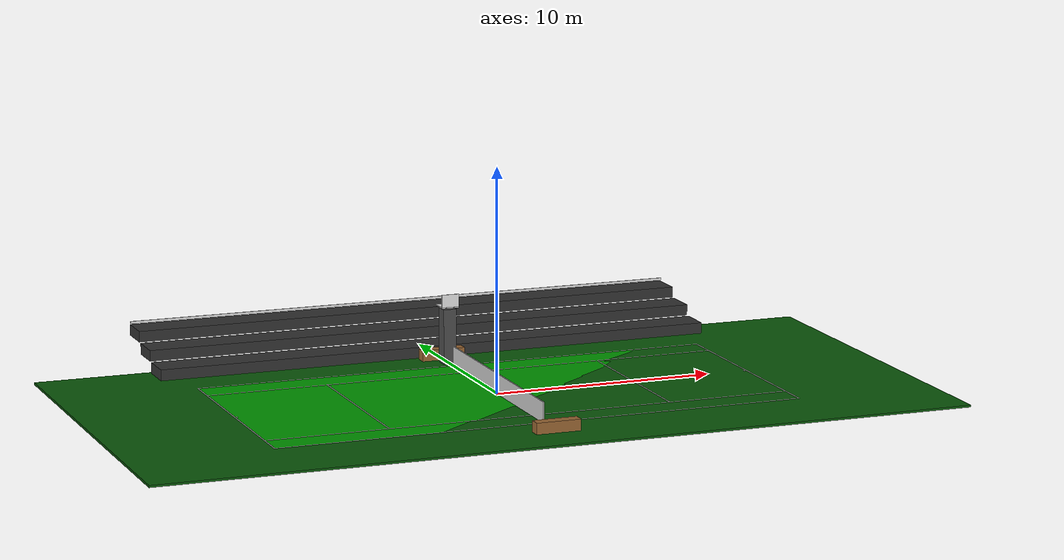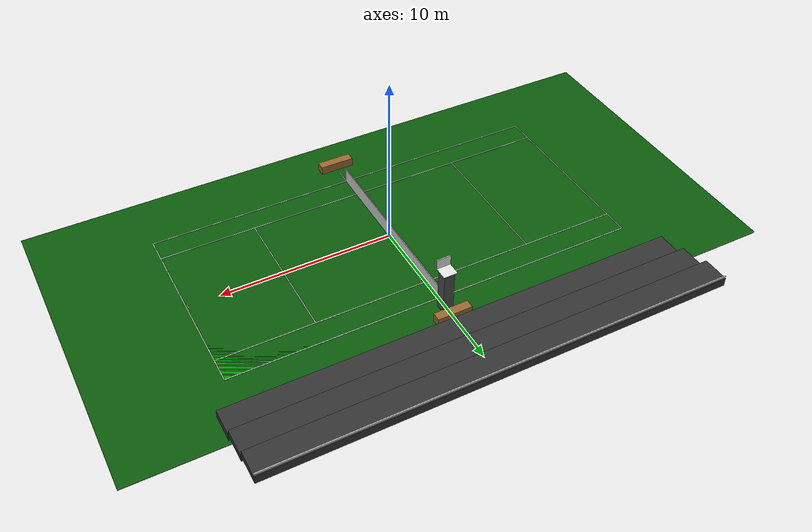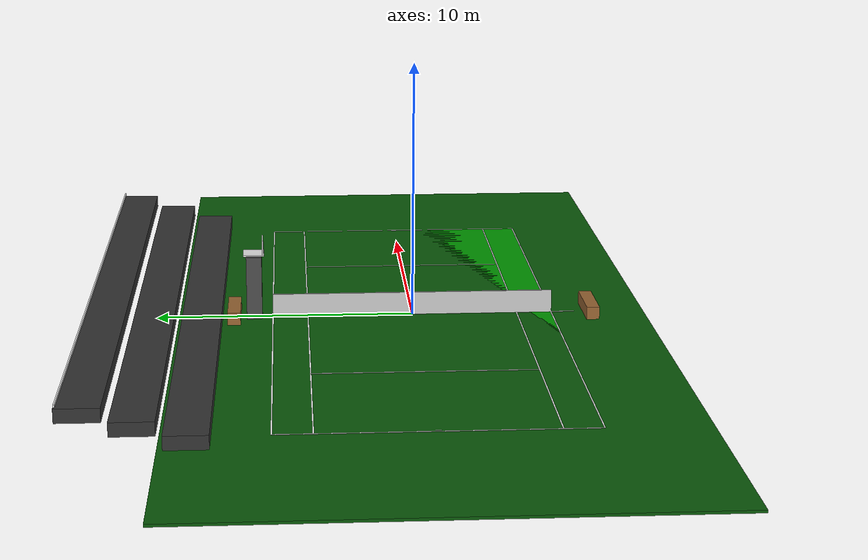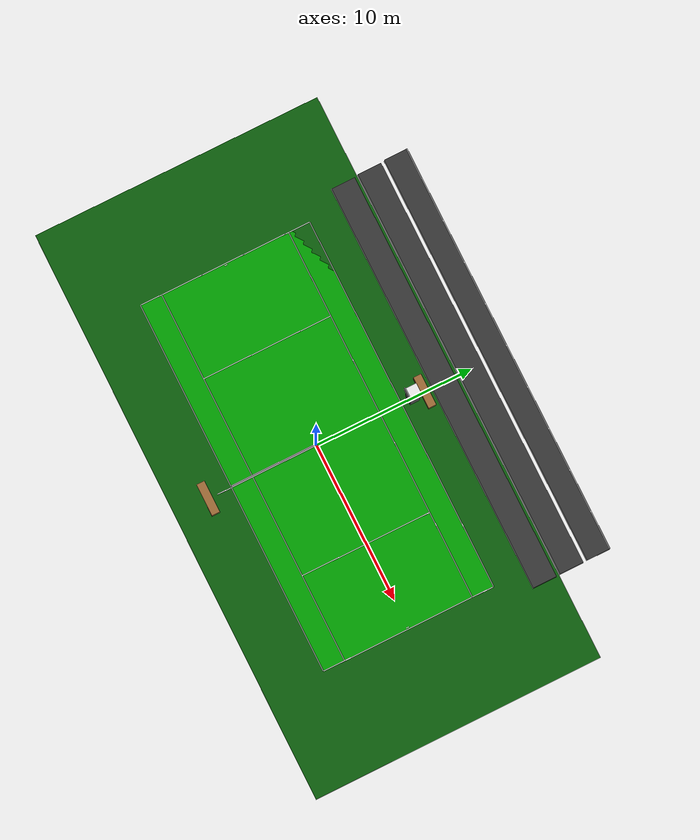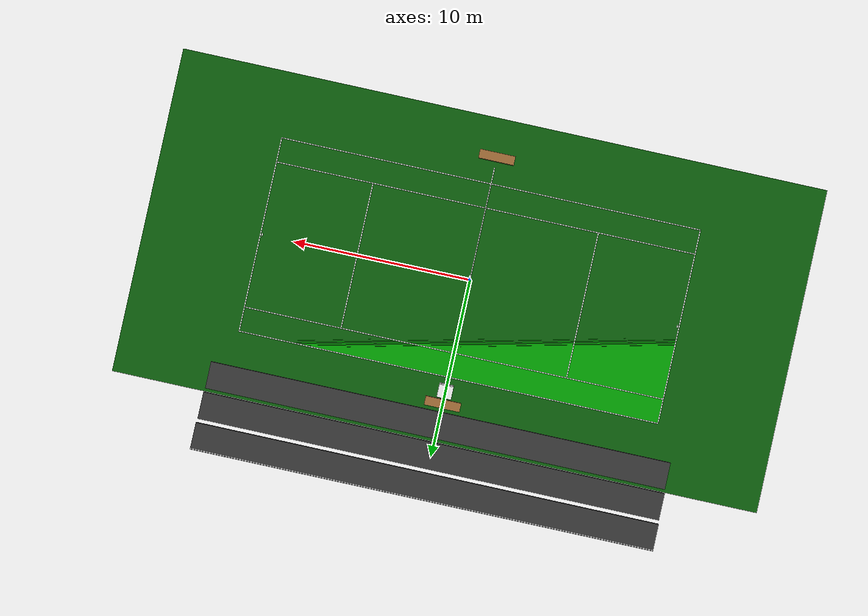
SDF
<?xml version="1.0" ?>
<sdf version="1.6">
  <world name="default">
    <!-- Built-in directional light (no model:// dependency) -->
    <light type="directional" name="sun">
      <cast_shadows>true</cast_shadows>
      <pose>11.85 0 0 0 0 0</pose>
      <diffuse>1 1 1 1</diffuse>
      <specular>0.1 0.1 0.1 1</specular>
      <attenuation>
        <range>1000</range>
        <constant>0.9</constant>
        <linear>0.01</linear>
        <quadratic>0.001</quadratic>
      </attenuation>
      <direction>-0.5 0.2 -1</direction>
    </light>

    <!-- ===== Tennis Court Model ===== -->
    <model name="tennis_court_scene">
      <static>true</static>
      <pose>0 0 0 0 0 0</pose>

      <!-- Outer venue apron (120ft x 60ft ≈ 36.57m x 18.29m) -->
      <link name="outer_apron">
        <collision name="outer_apron_collision">
          <geometry><box><size>36.57 18.29 0.10</size></box></geometry>
        </collision>
        <visual name="outer_apron_visual">
          <geometry><box><size>36.57 18.29 0.10</size></box></geometry>
          <material>
            <!-- darker green apron -->
            <ambient>0.02 0.25 0.02 1</ambient>
            <diffuse>0.04 0.35 0.04 1</diffuse>
            <specular>0.05 0.05 0.05 1</specular>
          </material>
        </visual>
        <!-- Put the top at z=0 for easy line placement -->
        <pose>0 0 -0.05 0 0 0</pose>
      </link>

      <!-- Main court (23.77m x 10.97m) -->
      <link name="court_ground">
        <collision name="court_collision">
          <geometry><box><size>23.77 10.97 0.10</size></box></geometry>
          <surface><friction><ode><mu>1.0</mu><mu2>1.0</mu2></ode></friction></surface>
        </collision>
        <visual name="court_visual">
          <geometry><box><size>23.77 10.97 0.10</size></box></geometry>
          <material>
            <!-- lighter playing area -->
            <ambient>0.0 0.50 0.0 1</ambient>
            <diffuse>0.0 0.60 0.0 1</diffuse>
            <specular>0.1 0.1 0.1 1</specular>
          </material>
        </visual>
        <!-- Top of the slab at z=0 -->
        <pose>0 0 -0.05 0 0 0</pose>
      </link>

      <!-- Court lines (thin white boxes slightly above the surface to avoid z-fighting) -->
      <link name="court_lines">
        <visual name="lines_visual_bundle">
          <!-- we’ll add many child visuals; no collision -->
          <geometry><box><size>0.001 0.001 0.001</size></box></geometry> <!-- dummy -->
        </visual>
        <pose>0 0 0.005 0 0 0</pose> <!-- lift lines 5mm above surface -->

        <!-- Common material for white lines -->
        <!-- (Gazebo Classic doesn't support "materials" reusable blocks; we just repeat) -->

        <!-- Dimensions & positions -->
        <!-- Court half-length: 11.885; half-width (doubles): 5.485; singles half-width: 4.115; service line x=±6.40 -->
        <!-- Line thickness (visual): 0.05m -->

        <!-- Baselines (at x=±11.885, spanning doubles width 10.97) -->
        <visual name="baseline_positive_x">
          <geometry><box><size>0.05 10.97 0.01</size></box></geometry>
          <material><ambient>1 1 1 1</ambient><diffuse>1 1 1 1</diffuse></material>
          <pose>11.885 0 0 0 0 0</pose>
        </visual>
        <visual name="baseline_negative_x">
          <geometry><box><size>0.05 10.97 0.01</size></box></geometry>
          <material><ambient>1 1 1 1</ambient><diffuse>1 1 1 1</diffuse></material>
          <pose>-11.885 0 0 0 0 0</pose>
        </visual>

        <!-- Doubles sidelines (y=±5.485, spanning full length 23.77) -->
        <visual name="doubles_sideline_posy">
          <geometry><box><size>23.77 0.05 0.01</size></box></geometry>
          <material><ambient>1 1 1 1</ambient><diffuse>1 1 1 1</diffuse></material>
          <pose>0 5.485 0 0 0 0</pose>
        </visual>
        <visual name="doubles_sideline_negy">
          <geometry><box><size>23.77 0.05 0.01</size></box></geometry>
          <material><ambient>1 1 1 1</ambient><diffuse>1 1 1 1</diffuse></material>
          <pose>0 -5.485 0 0 0 0</pose>
        </visual>

        <!-- Singles sidelines (y=±4.115, spanning 23.77) -->
        <visual name="singles_sideline_posy">
          <geometry><box><size>23.77 0.05 0.01</size></box></geometry>
          <material><ambient>1 1 1 1</ambient><diffuse>1 1 1 1</diffuse></material>
          <pose>0 4.115 0 0 0 0</pose>
        </visual>
        <visual name="singles_sideline_negy">
          <geometry><box><size>23.77 0.05 0.01</size></box></geometry>
          <material><ambient>1 1 1 1</ambient><diffuse>1 1 1 1</diffuse></material>
          <pose>0 -4.115 0 0 0 0</pose>
        </visual>

        <!-- Service lines (x=±6.40, spanning singles width 8.23) -->
        <visual name="service_line_posx">
          <geometry><box><size>0.05 8.23 0.01</size></box></geometry>
          <material><ambient>1 1 1 1</ambient><diffuse>1 1 1 1</diffuse></material>
          <pose>6.40 0 0 0 0 0</pose>
        </visual>
        <visual name="service_line_negx">
          <geometry><box><size>0.05 8.23 0.01</size></box></geometry>
          <material><ambient>1 1 1 1</ambient><diffuse>1 1 1 1</diffuse></material>
          <pose>-6.40 0 0 0 0 0</pose>
        </visual>

        <!-- Center service line (y=0 between the two service lines; length 8.23) -->
        <visual name="center_service_line">
          <geometry><box><size>12.80 0.05 0.01</size></box></geometry> <!-- spans from -6.40 to +6.40 -->
          <material><ambient>1 1 1 1</ambient><diffuse>1 1 1 1</diffuse></material>
          <pose>0 0 0 0 0 1.57079632679</pose> <!-- rotate 90deg around Z to make long side along X if needed -->
        </visual>

        <!-- Center marks on baselines (short lines at y=0, extend into court ~0.2m) -->
        <visual name="center_mark_posx">
          <geometry><box><size>0.20 0.05 0.01</size></box></geometry>
          <material><ambient>1 1 1 1</ambient><diffuse>1 1 1 1</diffuse></material>
          <!-- Place slightly inside the court from the baseline at +x -->
          <pose>11.785 0 0 0 0 1.57079632679</pose>
        </visual>
        <visual name="center_mark_negx">
          <geometry><box><size>0.20 0.05 0.01</size></box></geometry>
          <material><ambient>1 1 1 1</ambient><diffuse>1 1 1 1</diffuse></material>
          <pose>-11.785 0 0 0 0 1.57079632679</pose>
        </visual>
      </link>

      <!-- Net (already present), centered at x=0, spanning doubles width -->
      <link name="net">
        <collision name="net_collision">
          <geometry><box><size>0.05 10.97 0.91</size></box></geometry>
        </collision>
        <visual name="net_visual">
          <geometry><box><size>0.05 10.97 0.91</size></box></geometry>
          <material>
            <ambient>0.8 0.8 0.8 1</ambient>
            <diffuse>0.8 0.8 0.8 1</diffuse>
          </material>
        </visual>
        <pose>0 0 0.455 0 0 0</pose>
      </link>

      <!-- Player benches (simple boxes), placed near net outside the doubles sideline -->
      <!-- Bench dimensions: 2.0m x 0.5m x 0.5m -->
      <link name="bench_posy">
        <collision name="bench_posy_collision">
          <geometry><box><size>2.0 0.5 0.5</size></box></geometry>
        </collision>
        <visual name="bench_posy_visual">
          <geometry><box><size>2.0 0.5 0.5</size></box></geometry>
          <material>
            <ambient>0.50 0.30 0.10 1</ambient>
            <diffuse>0.60 0.40 0.20 1</diffuse>
          </material>
        </visual>
        <!-- y = +6.985 ≈ +5.485 (sideline) + 1.5m buffer -->
        <pose>0 6.985 0.25 0 0 0</pose>
      </link>

      <link name="bench_negy">
        <collision name="bench_negy_collision">
          <geometry><box><size>2.0 0.5 0.5</size></box></geometry>
        </collision>
        <visual name="bench_negy_visual">
          <geometry><box><size>2.0 0.5 0.5</size></box></geometry>
          <material>
            <ambient>0.50 0.30 0.10 1</ambient>
            <diffuse>0.60 0.40 0.20 1</diffuse>
          </material>
        </visual>
        <pose>0 -6.985 0.25 0 0 0</pose>
      </link>

      <!-- Umpire chair (裁判座位): simple tower + seat near the net on the audience (front) side (positive Y) -->
      <link name="umpire_chair">
        <!-- Tower -->
        <collision name="chair_tower_collision">
          <geometry><box><size>0.6 0.6 2.5</size></box></geometry>
        </collision>
        <visual name="chair_tower_visual">
          <geometry><box><size>0.6 0.6 2.5</size></box></geometry>
          <material>
            <ambient>0.2 0.2 0.2 1</ambient>
            <diffuse>0.3 0.3 0.3 1</diffuse>
          </material>
        </visual>
        <!-- Seat platform -->
        <visual name="chair_seat_visual">
          <geometry><box><size>0.8 0.8 0.05</size></box></geometry>
          <material>
            <ambient>0.8 0.8 0.8 1</ambient>
            <diffuse>0.9 0.9 0.9 1</diffuse>
          </material>
          <pose>0 0 1.35 0 0 0</pose>
        </visual>
        <!-- Seat back -->
        <visual name="chair_back_visual">
          <geometry><box><size>0.8 0.05 0.6</size></box></geometry>
          <material>
            <ambient>0.8 0.8 0.8 1</ambient>
            <diffuse>0.9 0.9 0.9 1</diffuse>
          </material>
          <pose>0 -0.35 1.65 0 0 0</pose>
        </visual>
        <!-- Place slightly off the sideline, near the net, on +Y (audience/front) side -->
        <pose>0 6.2 1.25 0 0 0</pose>
      </link>

      <!-- Simple audience stand along +Y sideline -->
      <link name="audience_stand">
        <!-- Three stepped rows -->
        <visual name="row1">
          <geometry><box><size>26.0 1.5 0.5</size></box></geometry>
          <material><ambient>0.15 0.15 0.15 1</ambient><diffuse>0.2 0.2 0.2 1</diffuse></material>
          <pose>0 8.2 0.25 0 0 0</pose>
        </visual>
        <visual name="row2">
          <geometry><box><size>26.0 1.5 0.5</size></box></geometry>
          <material><ambient>0.15 0.15 0.15 1</ambient><diffuse>0.2 0.2 0.2 1</diffuse></material>
          <pose>0 9.9 0.75 0 0 0</pose>
        </visual>
        <visual name="row3">
          <geometry><box><size>26.0 1.5 0.5</size></box></geometry>
          <material><ambient>0.15 0.15 0.15 1</ambient><diffuse>0.2 0.2 0.2 1</diffuse></material>
          <pose>0 11.6 1.25 0 0 0</pose>
        </visual>
        <!-- Optional simple rail -->
        <visual name="rail">
          <geometry><box><size>26.0 0.05 0.10</size></box></geometry>
          <material><ambient>0.8 0.8 0.8 1</ambient><diffuse>0.9 0.9 0.9 1</diffuse></material>
          <pose>0 12.3 1.60 0 0 0</pose>
        </visual>
        <collision name="stand_collision">
          <geometry><box><size>26.0 4.0 1.6</size></box></geometry>
        </collision>
        <pose>0 0 0 0 0 0</pose>
      </link>

    </model>
  </world>
</sdf>
